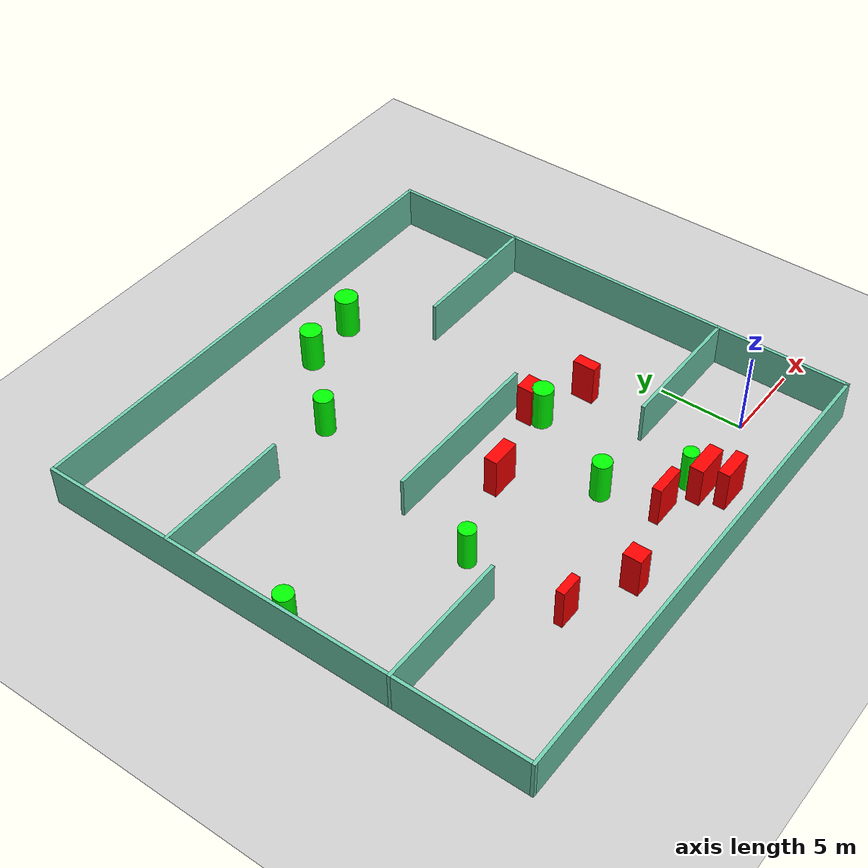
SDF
<sdf version="1.7">
 <world name="default">
  <light name="sun" type="directional">
   <pose>0 0 10 0 -0 0</pose>
   <diffuse>0.8 0.8 0.8 1</diffuse>
   <specular>0.2 0.2 0.2 1</specular>
   <attenuation>
    <range>1000</range>
    <constant>0.9</constant>
    <linear>0.01</linear>
    <quadratic>0.001</quadratic>
   </attenuation>
   <direction>-0.5 0.1 -0.9</direction>
   <spot><inner_angle>0</inner_angle><outer_angle>0</outer_angle><falloff>0</falloff></spot>
  </light>
  <model name="ground_plane">
   <static>1</static>
   <link name="link">
    <collision name="collision">
     <geometry><plane><normal>0 0 1</normal><size>100 100</size></plane></geometry>
     <surface>
      <contact><collide_bitmask>65535</collide_bitmask></contact>
      <friction><ode><mu>100</mu><mu2>50</mu2></ode></friction>
     </surface>
    </collision>
    <visual name="visual">
     <cast_shadows>0</cast_shadows>
     <geometry><plane><normal>0 0 1</normal><size>100 100</size></plane></geometry>
     <material>
      <script><uri>file://media/materials/scripts/gazebo.material</uri><name>Gazebo/Grey</name></script>
     </material>
    </visual>
   </link>
  </model>
  <gravity>0 0 -9.8</gravity>
  <magnetic_field>6e-06 2.3e-05 -4.2e-05</magnetic_field>
  <atmosphere type="adiabatic"/>
  <physics type="ode">
   <max_step_size>0.001</max_step_size>
   <real_time_factor>1</real_time_factor>
   <real_time_update_rate>1000</real_time_update_rate>
  </physics>
  <scene><ambient>0.4 0.4 0.4 1</ambient><background>0.7 0.7 0.7 1</background><shadows>1</shadows></scene>
  <spherical_coordinates>
   <surface_model>EARTH_WGS84</surface_model>
   <latitude_deg>0</latitude_deg>
   <longitude_deg>0</longitude_deg>
   <elevation>0</elevation>
   <heading_deg>0</heading_deg>
  </spherical_coordinates>
  <model name="my_base_walls">
   <link name="Wall_10">
    <collision name="Wall_10_Collision">
     <geometry><box><size>8.2 0.2 2.5</size></box></geometry>
     <pose>0 0 1.25 0 -0 0</pose>
    </collision>
    <visual name="Wall_10_Visual">
     <pose>0 0 1.25 0 -0 0</pose>
     <geometry><box><size>8.2 0.2 2.5</size></box></geometry>
     <material>
      <script><uri>file://media/materials/scripts/gazebo.material</uri><name>Gazebo/Grey</name></script>
      <ambient>0.435294 0.796078 0.67451 1</ambient>
     </material>
     <meta><layer>0</layer></meta>
    </visual>
    <pose>-11 -7 0 0 -0 0</pose>
   </link>
   <link name="Wall_12">
    <collision name="Wall_12_Collision">
     <geometry><box><size>8.2 0.2 2.5</size></box></geometry>
     <pose>0 0 1.25 0 -0 0</pose>
    </collision>
    <visual name="Wall_12_Visual">
     <pose>0 0 1.25 0 -0 0</pose>
     <geometry><box><size>8.2 0.2 2.5</size></box></geometry>
     <material>
      <script><uri>file://media/materials/scripts/gazebo.material</uri><name>Gazebo/Grey</name></script>
      <ambient>0.435294 0.796078 0.67451 1</ambient>
     </material>
     <meta><layer>0</layer></meta>
    </visual>
    <pose>-11 7 0 0 -0 0</pose>
   </link>
   <link name="Wall_14">
    <collision name="Wall_14_Collision">
     <geometry><box><size>8.2 0.2 2.5</size></box></geometry>
     <pose>0 0 1.25 0 -0 0</pose>
    </collision>
    <visual name="Wall_14_Visual">
     <pose>0 0 1.25 0 -0 0</pose>
     <geometry><box><size>8.2 0.2 2.5</size></box></geometry>
     <material>
      <script><uri>file://media/materials/scripts/gazebo.material</uri><name>Gazebo/Grey</name></script>
      <ambient>0.435294 0.796078 0.67451 1</ambient>
     </material>
     <meta><layer>0</layer></meta>
    </visual>
    <pose>11 7 0 0 -0 3.14159</pose>
   </link>
   <link name="Wall_16">
    <collision name="Wall_16_Collision">
     <geometry><box><size>10.2 0.2 2.5</size></box></geometry>
     <pose>0 0 1.25 0 -0 0</pose>
    </collision>
    <visual name="Wall_16_Visual">
     <pose>0 0 1.25 0 -0 0</pose>
     <geometry><box><size>10.2 0.2 2.5</size></box></geometry>
     <material>
      <script><uri>file://media/materials/scripts/gazebo.material</uri><name>Gazebo/Grey</name></script>
      <ambient>0.435294 0.796078 0.67451 1</ambient>
     </material>
     <meta><layer>0</layer></meta>
    </visual>
    <pose>0 0 0 0 -0 3.14159</pose>
   </link>
   <link name="Wall_2">
    <collision name="Wall_2_Collision">
     <geometry><box><size>30.2 0.2 2.5</size></box></geometry>
     <pose>0 0 1.25 0 -0 0</pose>
    </collision>
    <visual name="Wall_2_Visual">
     <pose>0 0 1.25 0 -0 0</pose>
     <geometry><box><size>30.2 0.2 2.5</size></box></geometry>
     <material>
      <script><uri>file://media/materials/scripts/gazebo.material</uri><name>Gazebo/Grey</name></script>
      <ambient>0.435294 0.796078 0.67451 1</ambient>
     </material>
     <meta><layer>0</layer></meta>
    </visual>
    <pose>0 -15 0 0 -0 3.14159</pose>
   </link>
   <link name="Wall_3">
    <collision name="Wall_3_Collision">
     <geometry><box><size>30.2 0.2 2.5</size></box></geometry>
     <pose>0 0 1.25 0 -0 0</pose>
    </collision>
    <visual name="Wall_3_Visual">
     <pose>0 0 1.25 0 -0 0</pose>
     <geometry><box><size>30.2 0.2 2.5</size></box></geometry>
     <material>
      <script><uri>file://media/materials/scripts/gazebo.material</uri><name>Gazebo/Grey</name></script>
      <ambient>0.435294 0.796078 0.67451 1</ambient>
     </material>
     <meta><layer>0</layer></meta>
    </visual>
    <pose>-15 0 0 0 -0 1.5708</pose>
   </link>
   <link name="Wall_4">
    <collision name="Wall_4_Collision">
     <geometry><box><size>30.2 0.2 2.5</size></box></geometry>
     <pose>0 0 1.25 0 -0 0</pose>
    </collision>
    <visual name="Wall_4_Visual">
     <pose>0 0 1.25 0 -0 0</pose>
     <geometry><box><size>30.2 0.2 2.5</size></box></geometry>
     <material>
      <script><uri>file://media/materials/scripts/gazebo.material</uri><name>Gazebo/Grey</name></script>
      <ambient>0.435294 0.796078 0.67451 1</ambient>
     </material>
     <meta><layer>0</layer></meta>
    </visual>
    <pose>0 15 0 0 -0 0</pose>
   </link>
   <link name="Wall_6">
    <collision name="Wall_6_Collision">
     <geometry><box><size>30.2 0.2 2.5</size></box></geometry>
     <pose>0 0 1.25 0 -0 0</pose>
    </collision>
    <visual name="Wall_6_Visual">
     <pose>0 0 1.25 0 -0 0</pose>
     <geometry><box><size>30.2 0.2 2.5</size></box></geometry>
     <material>
      <script><uri>file://media/materials/scripts/gazebo.material</uri><name>Gazebo/Grey</name></script>
      <ambient>0.435294 0.796078 0.67451 1</ambient>
     </material>
     <meta><layer>0</layer></meta>
    </visual>
    <pose>15 0 0 0 -0 1.5708</pose>
   </link>
   <link name="Wall_8">
    <collision name="Wall_8_Collision">
     <geometry><box><size>8.2 0.2 2.5</size></box></geometry>
     <pose>0 0 1.25 0 -0 0</pose>
    </collision>
    <visual name="Wall_8_Visual">
     <pose>0 0 1.25 0 -0 0</pose>
     <geometry><box><size>8.2 0.2 2.5</size></box></geometry>
     <material>
      <script><uri>file://media/materials/scripts/gazebo.material</uri><name>Gazebo/Grey</name></script>
      <ambient>0.435294 0.796078 0.67451 1</ambient>
     </material>
     <meta><layer>0</layer></meta>
    </visual>
    <pose>11 -7 0 0 -0 3.14159</pose>
   </link>
   <static>1</static>
   <pose>-11 11 0 0 -0 0</pose>
  </model>
  <model name="cylinder1">
   <static>1</static>
   <link name="link">
    <inertial>
     <mass>1</mass>
     <inertia><ixx>0.5</ixx><ixy>0</ixy><ixz>0</ixz><iyy>0.5</iyy><iyz>0</iyz><izz>1</izz></inertia>
    </inertial>
    <collision name="collision">
     <geometry><cylinder><radius>0.5555123354253888</radius><length>2.5</length></cylinder></geometry>
    </collision>
    <visual name="visual">
     <geometry><cylinder><radius>0.5555123354253888</radius><length>2.5</length></cylinder></geometry>
     <material>
      <ambient>0 1 0 1</ambient>
      <diffuse>0 1 0 1</diffuse>
      <specular>0.1 0.1 0.1 1</specular>
      <emissive>0 0 0 0</emissive>
     </material>
    </visual>
   </link>
   <pose>-25.244581177917674 11.039875030203998 1.25 0 0 0</pose>
  </model>
  <model name="cylinder2">
   <static>1</static>
   <link name="link">
    <inertial>
     <mass>1</mass>
     <inertia><ixx>0.5</ixx><ixy>0</ixy><ixz>0</ixz><iyy>0.5</iyy><iyz>0</iyz><izz>1</izz></inertia>
    </inertial>
    <collision name="collision">
     <geometry><cylinder><radius>0.677490436601255</radius><length>2.5</length></cylinder></geometry>
    </collision>
    <visual name="visual">
     <geometry><cylinder><radius>0.677490436601255</radius><length>2.5</length></cylinder></geometry>
     <material>
      <ambient>0 1 0 1</ambient>
      <diffuse>0 1 0 1</diffuse>
      <specular>0.1 0.1 0.1 1</specular>
      <emissive>0 0 0 0</emissive>
     </material>
    </visual>
   </link>
   <pose>-6.353658428535891 22.63566972506328 1.25 0 0 0</pose>
  </model>
  <model name="cylinder3">
   <static>1</static>
   <link name="link">
    <inertial>
     <mass>1</mass>
     <inertia><ixx>0.5</ixx><ixy>0</ixy><ixz>0</ixz><iyy>0.5</iyy><iyz>0</iyz><izz>1</izz></inertia>
    </inertial>
    <collision name="collision">
     <geometry><cylinder><radius>0.607579455832958</radius><length>2.5</length></cylinder></geometry>
    </collision>
    <visual name="visual">
     <geometry><cylinder><radius>0.607579455832958</radius><length>2.5</length></cylinder></geometry>
     <material>
      <ambient>0 1 0 1</ambient>
      <diffuse>0 1 0 1</diffuse>
      <specular>0.1 0.1 0.1 1</specular>
      <emissive>0 0 0 0</emissive>
     </material>
    </visual>
   </link>
   <pose>-6.041067099570224 9.130701323086125 1.25 0 0 0</pose>
  </model>
  <model name="cylinder4">
   <static>1</static>
   <link name="link">
    <inertial>
     <mass>1</mass>
     <inertia><ixx>0.5</ixx><ixy>0</ixy><ixz>0</ixz><iyy>0.5</iyy><iyz>0</iyz><izz>1</izz></inertia>
    </inertial>
    <collision name="collision">
     <geometry><cylinder><radius>0.638233549657887</radius><length>2.5</length></cylinder></geometry>
    </collision>
    <visual name="visual">
     <geometry><cylinder><radius>0.638233549657887</radius><length>2.5</length></cylinder></geometry>
     <material>
      <ambient>0 1 0 1</ambient>
      <diffuse>0 1 0 1</diffuse>
      <specular>0.1 0.1 0.1 1</specular>
      <emissive>0 0 0 0</emissive>
     </material>
    </visual>
   </link>
   <pose>-9.828252110490466 22.37550754586262 1.25 0 0 0</pose>
  </model>
  <model name="cylinder5">
   <static>1</static>
   <link name="link">
    <inertial>
     <mass>1</mass>
     <inertia><ixx>0.5</ixx><ixy>0</ixy><ixz>0</ixz><iyy>0.5</iyy><iyz>0</iyz><izz>1</izz></inertia>
    </inertial>
    <collision name="collision">
     <geometry><cylinder><radius>0.5649434297493245</radius><length>2.5</length></cylinder></geometry>
    </collision>
    <visual name="visual">
     <geometry><cylinder><radius>0.5649434297493245</radius><length>2.5</length></cylinder></geometry>
     <material>
      <ambient>0 1 0 1</ambient>
      <diffuse>0 1 0 1</diffuse>
      <specular>0.1 0.1 0.1 1</specular>
      <emissive>0 0 0 0</emissive>
     </material>
    </visual>
   </link>
   <pose>-13.589469796634273 18.304958731614366 1.25 0 0 0</pose>
  </model>
  <model name="cylinder6">
   <static>1</static>
   <link name="link">
    <inertial>
     <mass>1</mass>
     <inertia><ixx>0.5</ixx><ixy>0</ixy><ixz>0</ixz><iyy>0.5</iyy><iyz>0</iyz><izz>1</izz></inertia>
    </inertial>
    <collision name="collision">
     <geometry><cylinder><radius>0.5550371539087509</radius><length>2.5</length></cylinder></geometry>
    </collision>
    <visual name="visual">
     <geometry><cylinder><radius>0.5550371539087509</radius><length>2.5</length></cylinder></geometry>
     <material>
      <ambient>0 1 0 1</ambient>
      <diffuse>0 1 0 1</diffuse>
      <specular>0.1 0.1 0.1 1</specular>
      <emissive>0 0 0 0</emissive>
     </material>
    </visual>
   </link>
   <pose>-8.804673432196699 3.542400718557052 1.25 0 0 0</pose>
  </model>
  <model name="cylinder7">
   <static>1</static>
   <link name="link">
    <inertial>
     <mass>1</mass>
     <inertia><ixx>0.5</ixx><ixy>0</ixy><ixz>0</ixz><iyy>0.5</iyy><iyz>0</iyz><izz>1</izz></inertia>
    </inertial>
    <collision name="collision">
     <geometry><cylinder><radius>0.4414830863170224</radius><length>2.5</length></cylinder></geometry>
    </collision>
    <visual name="visual">
     <geometry><cylinder><radius>0.4414830863170224</radius><length>2.5</length></cylinder></geometry>
     <material>
      <ambient>0 1 0 1</ambient>
      <diffuse>0 1 0 1</diffuse>
      <specular>0.1 0.1 0.1 1</specular>
      <emissive>0 0 0 0</emissive>
     </material>
    </visual>
   </link>
   <pose>-5.48771699510176 0.19587692976399973 1.25 0 0 0</pose>
  </model>
  <model name="cylinder8">
   <static>1</static>
   <link name="link">
    <inertial>
     <mass>1</mass>
     <inertia><ixx>0.5</ixx><ixy>0</ixy><ixz>0</ixz><iyy>0.5</iyy><iyz>0</iyz><izz>1</izz></inertia>
    </inertial>
    <collision name="collision">
     <geometry><cylinder><radius>0.4884973754330506</radius><length>2.5</length></cylinder></geometry>
    </collision>
    <visual name="visual">
     <geometry><cylinder><radius>0.4884973754330506</radius><length>2.5</length></cylinder></geometry>
     <material>
      <ambient>0 1 0 1</ambient>
      <diffuse>0 1 0 1</diffuse>
      <specular>0.1 0.1 0.1 1</specular>
      <emissive>0 0 0 0</emissive>
     </material>
    </visual>
   </link>
   <pose>-16.706102634238984 6.411348880505358 1.25 0 0 0</pose>
  </model>
  <model name="box1">
   <static>1</static>
   <link name="link">
    <inertial>
     <mass>1</mass>
     <inertia><ixx>0.083</ixx><ixy>0</ixy><ixz>0</ixz><iyy>0.083</iyy><iyz>0</iyz><izz>0.083</izz></inertia>
    </inertial>
    <collision name="collision">
     <geometry><box><size>0.980126558070209 1.077564019698585 2.5</size></box></geometry>
    </collision>
    <visual name="visual">
     <geometry><box><size>0.980126558070209 1.077564019698585 2.5</size></box></geometry>
     <material>
      <ambient>1 0 0 1</ambient>
      <diffuse>1 0 0 1</diffuse>
      <specular>0.1 0.1 0.1 1</specular>
      <emissive>0 0 0 0</emissive>
     </material>
    </visual>
    <sensor name="my_contact" type="contact">
     <contact><collision>box_collision</collision><topic>__default_topic__</topic></contact>
    </sensor>
   </link>
   <pose>-13.053152283867655 -1.1928997422959835 1.25 0 0 0</pose>
  </model>
  <model name="box2">
   <static>1</static>
   <link name="link">
    <inertial>
     <mass>1</mass>
     <inertia><ixx>0.083</ixx><ixy>0</ixy><ixz>0</ixz><iyy>0.083</iyy><iyz>0</iyz><izz>0.083</izz></inertia>
    </inertial>
    <collision name="collision">
     <geometry><box><size>0.669122613622449 1.3496690500639346 2.5</size></box></geometry>
    </collision>
    <visual name="visual">
     <geometry><box><size>0.669122613622449 1.3496690500639346 2.5</size></box></geometry>
     <material>
      <ambient>1 0 0 1</ambient>
      <diffuse>1 0 0 1</diffuse>
      <specular>0.1 0.1 0.1 1</specular>
      <emissive>0 0 0 0</emissive>
     </material>
    </visual>
    <sensor name="my_contact" type="contact">
     <contact><collision>box_collision</collision><topic>__default_topic__</topic></contact>
    </sensor>
   </link>
   <pose>-2.8944821909253733 8.346720506035238 1.25 0 0 0</pose>
  </model>
  <model name="box3">
   <static>1</static>
   <link name="link">
    <inertial>
     <mass>1</mass>
     <inertia><ixx>0.083</ixx><ixy>0</ixy><ixz>0</ixz><iyy>0.083</iyy><iyz>0</iyz><izz>0.083</izz></inertia>
    </inertial>
    <collision name="collision">
     <geometry><box><size>1.772622262443416 0.791089547412236 2.5</size></box></geometry>
    </collision>
    <visual name="visual">
     <geometry><box><size>1.772622262443416 0.791089547412236 2.5</size></box></geometry>
     <material>
      <ambient>1 0 0 1</ambient>
      <diffuse>1 0 0 1</diffuse>
      <specular>0.1 0.1 0.1 1</specular>
      <emissive>0 0 0 0</emissive>
     </material>
    </visual>
    <sensor name="my_contact" type="contact">
     <contact><collision>box_collision</collision><topic>__default_topic__</topic></contact>
    </sensor>
   </link>
   <pose>-11.320995643737211 8.229442115675793 1.25 0 0 0</pose>
  </model>
  <model name="box4">
   <static>1</static>
   <link name="link">
    <inertial>
     <mass>1</mass>
     <inertia><ixx>0.083</ixx><ixy>0</ixy><ixz>0</ixz><iyy>0.083</iyy><iyz>0</iyz><izz>0.083</izz></inertia>
    </inertial>
    <collision name="collision">
     <geometry><box><size>1.1371846013471991 0.9589700534831224 2.5</size></box></geometry>
    </collision>
    <visual name="visual">
     <geometry><box><size>1.1371846013471991 0.9589700534831224 2.5</size></box></geometry>
     <material>
      <ambient>1 0 0 1</ambient>
      <diffuse>1 0 0 1</diffuse>
      <specular>0.1 0.1 0.1 1</specular>
      <emissive>0 0 0 0</emissive>
     </material>
    </visual>
    <sensor name="my_contact" type="contact">
     <contact><collision>box_collision</collision><topic>__default_topic__</topic></contact>
    </sensor>
   </link>
   <pose>-6.1537869268360055 9.882547005272638 1.25 0 0 0</pose>
  </model>
  <model name="box5">
   <static>1</static>
   <link name="link">
    <inertial>
     <mass>1</mass>
     <inertia><ixx>0.083</ixx><ixy>0</ixy><ixz>0</ixz><iyy>0.083</iyy><iyz>0</iyz><izz>0.083</izz></inertia>
    </inertial>
    <collision name="collision">
     <geometry><box><size>1.3870235233235635 0.5026413262927748 2.5</size></box></geometry>
    </collision>
    <visual name="visual">
     <geometry><box><size>1.3870235233235635 0.5026413262927748 2.5</size></box></geometry>
     <material>
      <ambient>1 0 0 1</ambient>
      <diffuse>1 0 0 1</diffuse>
      <specular>0.1 0.1 0.1 1</specular>
      <emissive>0 0 0 0</emissive>
     </material>
    </visual>
    <sensor name="my_contact" type="contact">
     <contact><collision>box_collision</collision><topic>__default_topic__</topic></contact>
    </sensor>
   </link>
   <pose>-16.708457208414814 0.43064708426509624 1.25 0 0 0</pose>
  </model>
  <model name="box6">
   <static>1</static>
   <link name="link">
    <inertial>
     <mass>1</mass>
     <inertia><ixx>0.083</ixx><ixy>0</ixy><ixz>0</ixz><iyy>0.083</iyy><iyz>0</iyz><izz>0.083</izz></inertia>
    </inertial>
    <collision name="collision">
     <geometry><box><size>2.0504458811329194 0.8089141352150933 2.5</size></box></geometry>
    </collision>
    <visual name="visual">
     <geometry><box><size>2.0504458811329194 0.8089141352150933 2.5</size></box></geometry>
     <material>
      <ambient>1 0 0 1</ambient>
      <diffuse>1 0 0 1</diffuse>
      <specular>0.1 0.1 0.1 1</specular>
      <emissive>0 0 0 0</emissive>
     </material>
    </visual>
    <sensor name="my_contact" type="contact">
     <contact><collision>box_collision</collision><topic>__default_topic__</topic></contact>
    </sensor>
   </link>
   <pose>-5.420248187997149 -0.6739563950732634 1.25 0 0 0</pose>
  </model>
  <model name="box7">
   <static>1</static>
   <link name="link">
    <inertial>
     <mass>1</mass>
     <inertia><ixx>0.083</ixx><ixy>0</ixy><ixz>0</ixz><iyy>0.083</iyy><iyz>0</iyz><izz>0.083</izz></inertia>
    </inertial>
    <collision name="collision">
     <geometry><box><size>1.901135841296586 0.6888314518756811 2.5</size></box></geometry>
    </collision>
    <visual name="visual">
     <geometry><box><size>1.901135841296586 0.6888314518756811 2.5</size></box></geometry>
     <material>
      <ambient>1 0 0 1</ambient>
      <diffuse>1 0 0 1</diffuse>
      <specular>0.1 0.1 0.1 1</specular>
      <emissive>0 0 0 0</emissive>
     </material>
    </visual>
    <sensor name="my_contact" type="contact">
     <contact><collision>box_collision</collision><topic>__default_topic__</topic></contact>
    </sensor>
   </link>
   <pose>-4.941540325594827 -1.9665048286724742 1.25 0 0 0</pose>
  </model>
  <model name="box8">
   <static>1</static>
   <link name="link">
    <inertial>
     <mass>1</mass>
     <inertia><ixx>0.083</ixx><ixy>0</ixy><ixz>0</ixz><iyy>0.083</iyy><iyz>0</iyz><izz>0.083</izz></inertia>
    </inertial>
    <collision name="collision">
     <geometry><box><size>1.9020801937032905 0.5453988059365281 2.5</size></box></geometry>
    </collision>
    <visual name="visual">
     <geometry><box><size>1.9020801937032905 0.5453988059365281 2.5</size></box></geometry>
     <material>
      <ambient>1 0 0 1</ambient>
      <diffuse>1 0 0 1</diffuse>
      <specular>0.1 0.1 0.1 1</specular>
      <emissive>0 0 0 0</emissive>
     </material>
    </visual>
    <sensor name="my_contact" type="contact">
     <contact><collision>box_collision</collision><topic>__default_topic__</topic></contact>
    </sensor>
   </link>
   <pose>-7.931280497250748 0.2272827324181148 1.25 0 0 0</pose>
  </model>
 </world>
</sdf>
